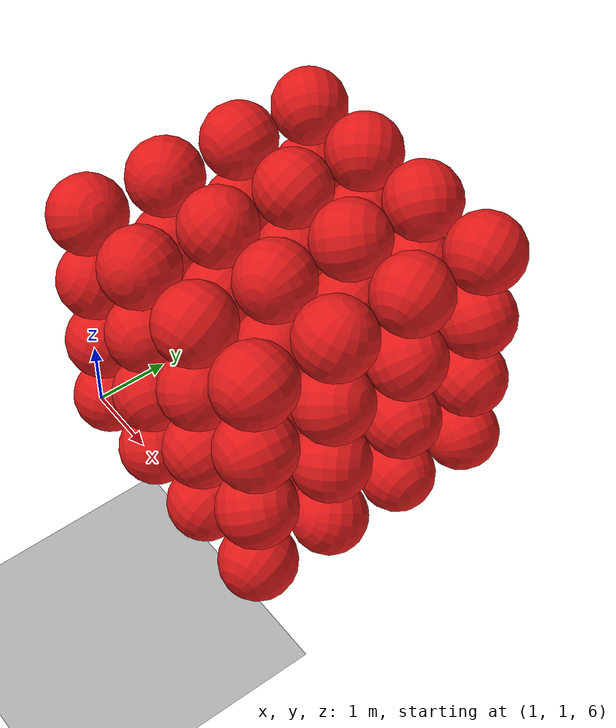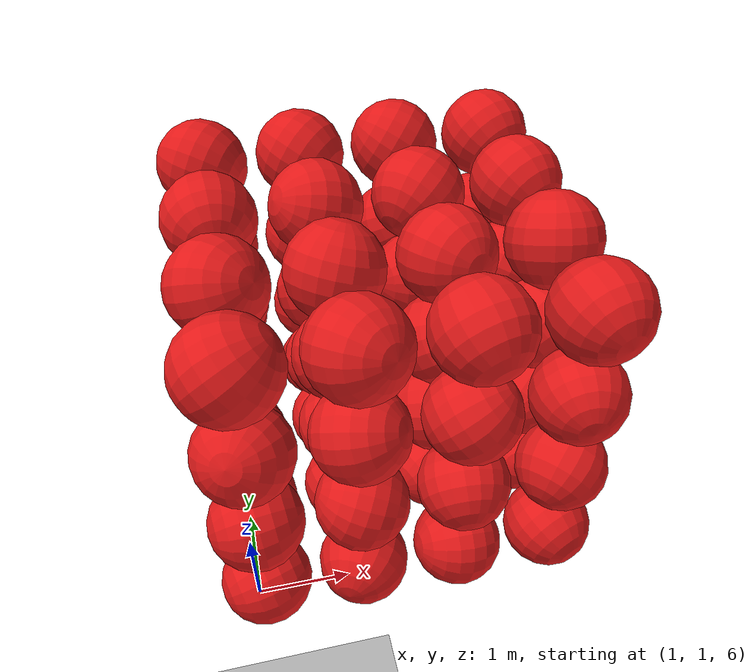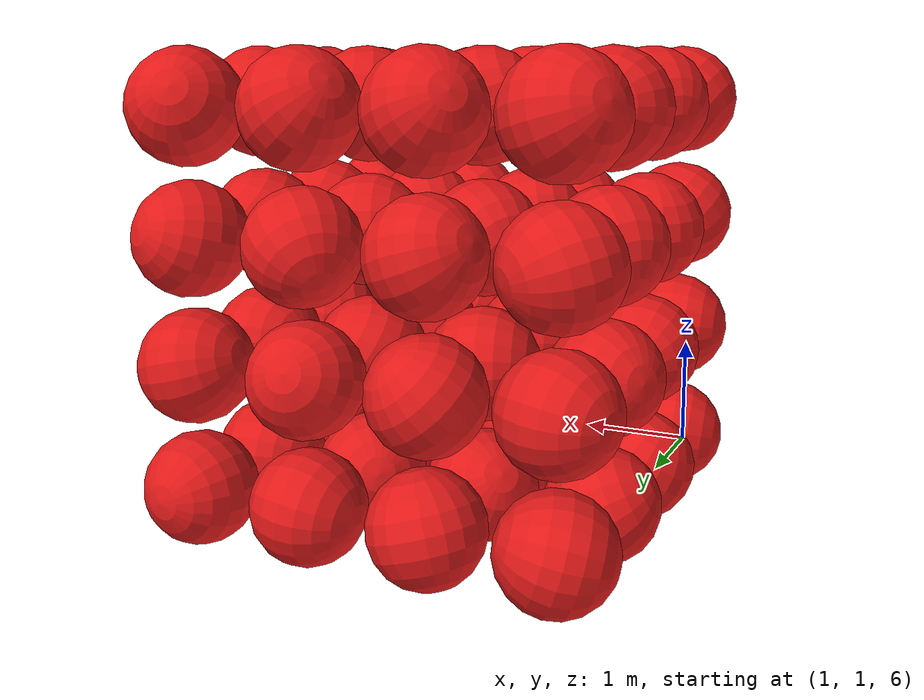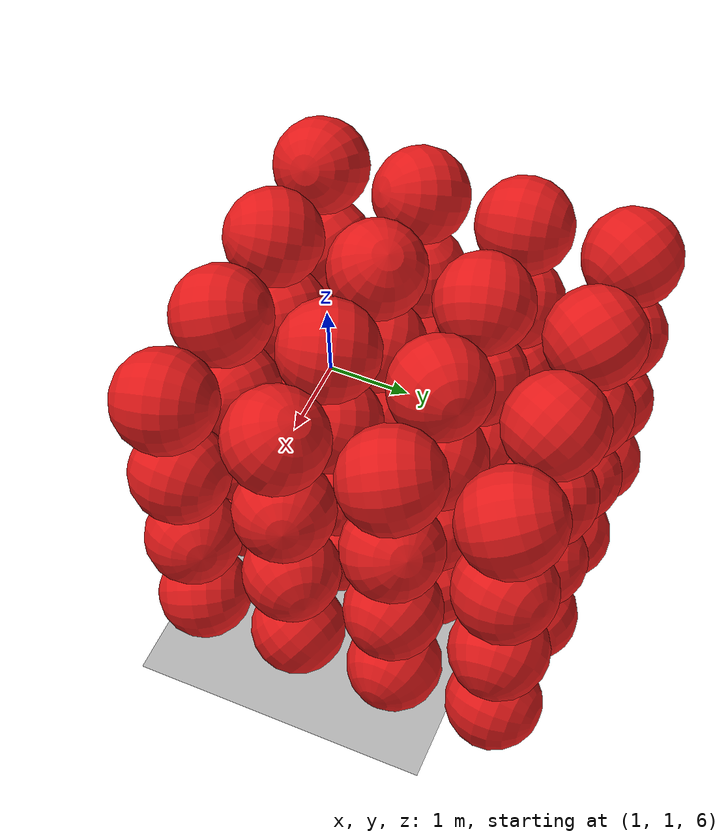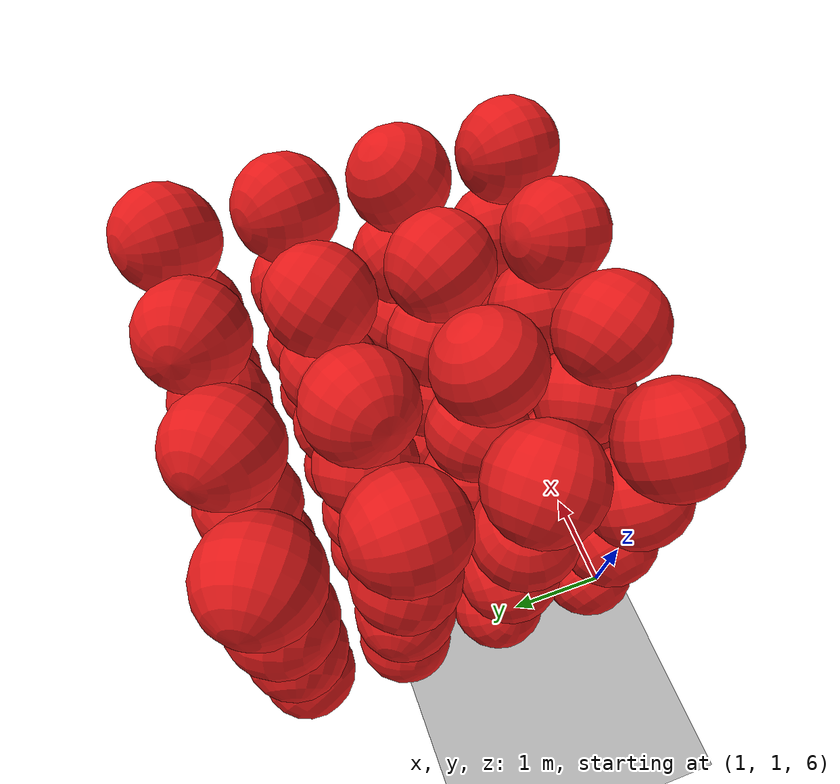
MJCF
<mujoco model="Humanoid and 100 objects">
    <compiler angle="degree"/>

    <option timestep="0.01" iterations="50" solver="PGS" jacobian="sparse" cone="elliptic" tolerance="1e-10"/>

    <size njmax="5000" nconmax="2000" nstack="1000000000"/>

    <default>
        <geom solimp=".9 .9 .01"/>

        <default class="object5">
			<geom type="sphere" material="geom" rgba=".9 .1 .1 1" size="0.500000"/>
        </default>
    </default>

    <asset>
        <texture type="skybox" builtin="gradient" width="128" height="128" rgb1=".4 .6 .8" rgb2="0 0 0"/>
        <texture name="texgeom" type="cube" builtin="flat" mark="cross" width="128" height="128"
            rgb1="0.6 0.6 0.6" rgb2="0.6 0.6 0.6" markrgb="1 1 1"/>
        <texture name="texplane" type="2d" builtin="checker" rgb1=".4 .4 .4" rgb2=".6 .6 .6"
            width="512" height="512"/>
        <material name='geom' texture="texgeom" texuniform="true"/>
        <material name='MatPlane' reflectance='0.3' texture="texplane" texrepeat="1 1" texuniform="true"/>
    </asset>

    <visual>
        <quality shadowsize="4096" offsamples="8"/>
        <map znear="0.1" force="0.05"/>
    </visual>

    <statistic extent="4"/>

    <worldbody>
        <light directional="true" diffuse=".8 .8 .8" pos="0 0 10" dir="0 0 -10"/>

        <geom pos="0 0 0" type="plane" size="3 3 .5" rgba=".7 .7 .7 1" material="MatPlane"/>
		<body pos="1.100521 1.100232 6.100489" quat="0.450100 0.649919 -0.379080 -0.480951"> <freejoint/> <geom class="object5"/> </body>
		<body pos="1.100988 1.100038 7.200885" quat="0.598861 0.429176 -0.581474 -0.345053"> <freejoint/> <geom class="object5"/> </body>
		<body pos="1.100335 1.100680 8.300137" quat="0.464071 -0.824899 0.322538 -0.012221"> <freejoint/> <geom class="object5"/> </body>
		<body pos="1.100779 1.100715 9.400904" quat="0.700829 -0.297305 0.356303 -0.541753"> <freejoint/> <geom class="object5"/> </body>
		<body pos="1.100031 2.200744 6.100500" quat="-0.046047 0.928205 0.251972 0.269861"> <freejoint/> <geom class="object5"/> </body>
		<body pos="1.100859 2.200805 7.200577" quat="-0.431603 -0.354002 0.526116 -0.641564"> <freejoint/> <geom class="object5"/> </body>
		<body pos="1.100490 2.200168 8.300979" quat="0.434151 0.000963 -0.059014 -0.898904"> <freejoint/> <geom class="object5"/> </body>
		<body pos="1.100682 2.200042 9.400071" quat="0.035828 -0.667360 0.526495 0.525500"> <freejoint/> <geom class="object5"/> </body>
		<body pos="1.100722 3.300150 6.100660" quat="0.032058 0.815416 0.256864 0.517775"> <freejoint/> <geom class="object5"/> </body>
		<body pos="1.100454 3.300432 7.200825" quat="-0.637706 -0.561614 -0.500041 -0.166974"> <freejoint/> <geom class="object5"/> </body>
		<body pos="1.100831 3.300803 8.300060" quat="-0.489255 0.130523 -0.404064 0.761791"> <freejoint/> <geom class="object5"/> </body>
		<body pos="1.100628 3.300292 9.400432" quat="-0.565181 0.564657 -0.388246 -0.459346"> <freejoint/> <geom class="object5"/> </body>
		<body pos="1.100372 4.400198 6.100490" quat="-0.206098 0.579915 0.539727 -0.574384"> <freejoint/> <geom class="object5"/> </body>
		<body pos="1.100738 4.400269 7.200423" quat="0.072299 0.668658 -0.124230 0.729546"> <freejoint/> <geom class="object5"/> </body>
		<body pos="1.100301 4.400701 8.300666" quat="0.094313 0.477526 0.401410 -0.775850"> <freejoint/> <geom class="object5"/> </body>
		<body pos="1.100128 4.400999 9.400171" quat="-0.742137 0.097173 0.606329 0.268617"> <freejoint/> <geom class="object5"/> </body>
		<body pos="2.200190 1.100369 6.100461" quat="0.682926 -0.487192 0.504105 0.205265"> <freejoint/> <geom class="object5"/> </body>
		<body pos="2.200376 1.100191 7.200428" quat="-0.037713 -0.795863 0.187765 -0.574390"> <freejoint/> <geom class="object5"/> </body>
		<body pos="2.200385 1.100583 8.300252" quat="-0.448890 0.250817 -0.502784 0.694836"> <freejoint/> <geom class="object5"/> </body>
		<body pos="2.200983 1.100730 9.400344" quat="0.122610 -0.572045 0.592576 0.553702"> <freejoint/> <geom class="object5"/> </body>
		<body pos="2.200818 2.200261 6.100594" quat="-0.771298 -0.120731 -0.302520 -0.546813"> <freejoint/> <geom class="object5"/> </body>
		<body pos="2.200179 2.200423 7.200094" quat="0.330431 -0.097515 0.657180 0.670389"> <freejoint/> <geom class="object5"/> </body>
		<body pos="2.200639 2.200034 8.300069" quat="-0.702822 0.120244 0.601706 -0.359907"> <freejoint/> <geom class="object5"/> </body>
		<body pos="2.200820 2.200718 9.400969" quat="0.070171 -0.391578 -0.883175 0.248487"> <freejoint/> <geom class="object5"/> </body>
		<body pos="2.200779 3.300423 6.100091" quat="-0.491190 -0.728478 -0.460620 -0.126021"> <freejoint/> <geom class="object5"/> </body>
		<body pos="2.200527 3.300457 7.200875" quat="0.027672 0.680027 0.211093 0.701596"> <freejoint/> <geom class="object5"/> </body>
		<body pos="2.200241 3.300676 8.300289" quat="0.306431 0.348046 -0.770513 -0.437348"> <freejoint/> <geom class="object5"/> </body>
		<body pos="2.200224 3.300668 9.400844" quat="-0.253333 0.456898 0.285573 -0.803440"> <freejoint/> <geom class="object5"/> </body>
		<body pos="2.200602 4.400387 6.100916" quat="-0.983040 -0.073998 -0.149079 -0.077019"> <freejoint/> <geom class="object5"/> </body>
		<body pos="2.200770 4.400322 7.200785" quat="-0.047052 -0.762613 -0.532449 0.364287"> <freejoint/> <geom class="object5"/> </body>
		<body pos="2.200473 4.400153 8.300341" quat="0.224153 -0.643417 0.497666 -0.536748"> <freejoint/> <geom class="object5"/> </body>
		<body pos="2.200917 4.400269 9.400766" quat="-0.554650 -0.378573 -0.728433 0.135767"> <freejoint/> <geom class="object5"/> </body>
		<body pos="3.300683 1.100547 6.100426" quat="0.473291 0.483694 0.586579 0.444928"> <freejoint/> <geom class="object5"/> </body>
		<body pos="3.300945 1.100209 7.200709" quat="-0.551879 -0.796329 0.224510 -0.104326"> <freejoint/> <geom class="object5"/> </body>
		<body pos="3.300459 1.100662 8.300770" quat="-0.360500 0.389930 -0.201792 0.822967"> <freejoint/> <geom class="object5"/> </body>
		<body pos="3.300833 1.100256 9.400613" quat="0.183635 0.090957 0.825955 -0.525170"> <freejoint/> <geom class="object5"/> </body>
		<body pos="3.300318 2.200119 6.100940" quat="0.701784 -0.099019 0.671722 0.215600"> <freejoint/> <geom class="object5"/> </body>
		<body pos="3.300647 2.200544 7.200721" quat="0.032510 0.713503 -0.406569 -0.569701"> <freejoint/> <geom class="object5"/> </body>
		<body pos="3.300110 2.200064 8.300405" quat="-0.158226 -0.411245 0.807587 0.391976"> <freejoint/> <geom class="object5"/> </body>
		<body pos="3.300772 2.200933 9.400973" quat="-0.470330 -0.551507 0.299735 -0.620313"> <freejoint/> <geom class="object5"/> </body>
		<body pos="3.300525 3.300530 6.100861" quat="-0.048097 -0.338319 0.544363 0.766091"> <freejoint/> <geom class="object5"/> </body>
		<body pos="3.300520 3.300348 7.200150" quat="0.148413 -0.410033 -0.785308 0.439475"> <freejoint/> <geom class="object5"/> </body>
		<body pos="3.300243 3.300442 8.300688" quat="-0.405695 0.681117 -0.303446 0.528593"> <freejoint/> <geom class="object5"/> </body>
		<body pos="3.300704 3.300442 9.400020" quat="-0.399907 -0.178957 -0.543155 -0.716263"> <freejoint/> <geom class="object5"/> </body>
		<body pos="3.300822 4.400430 6.100888" quat="-0.249580 0.617234 -0.236716 0.707600"> <freejoint/> <geom class="object5"/> </body>
		<body pos="3.300755 4.400377 7.200216" quat="0.494225 0.764641 -0.293455 0.291463"> <freejoint/> <geom class="object5"/> </body>
		<body pos="3.300439 4.400834 8.300769" quat="-0.479314 0.521425 0.705650 0.020777"> <freejoint/> <geom class="object5"/> </body>
		<body pos="3.300884 4.400588 9.400155" quat="-0.581287 -0.180204 0.481678 0.630570"> <freejoint/> <geom class="object5"/> </body>
		<body pos="4.400790 1.100319 6.100534" quat="-0.589946 -0.558646 -0.523273 0.257030"> <freejoint/> <geom class="object5"/> </body>
		<body pos="4.400495 1.100190 7.200495" quat="-0.525961 -0.664222 0.523455 0.090388"> <freejoint/> <geom class="object5"/> </body>
		<body pos="4.400930 1.100697 8.300583" quat="0.368731 0.443105 0.571586 -0.583939"> <freejoint/> <geom class="object5"/> </body>
		<body pos="4.400865 1.100613 9.400990" quat="0.067925 -0.050248 0.739483 -0.667852"> <freejoint/> <geom class="object5"/> </body>
		<body pos="4.400498 2.200901 6.100575" quat="0.693646 0.479555 0.172794 -0.508945"> <freejoint/> <geom class="object5"/> </body>
		<body pos="4.400666 2.200083 7.200626" quat="0.236277 0.337290 0.573648 0.708051"> <freejoint/> <geom class="object5"/> </body>
		<body pos="4.400769 2.200581 8.300928" quat="0.111600 -0.673051 -0.528306 0.505412"> <freejoint/> <geom class="object5"/> </body>
		<body pos="4.400484 2.200845 9.400209" quat="0.104209 0.258839 -0.932674 0.228607"> <freejoint/> <geom class="object5"/> </body>
		<body pos="4.400362 3.300050 6.100490" quat="-0.459246 -0.562937 -0.439854 -0.527942"> <freejoint/> <geom class="object5"/> </body>
		<body pos="4.400189 3.300043 7.200635" quat="-0.738857 0.130734 0.661053 -0.002994"> <freejoint/> <geom class="object5"/> </body>
		<body pos="4.400536 3.300445 8.300124" quat="-0.017119 0.626681 0.663836 -0.407798"> <freejoint/> <geom class="object5"/> </body>
		<body pos="4.400208 3.300565 9.400640" quat="-0.121201 -0.429499 0.654323 -0.610494"> <freejoint/> <geom class="object5"/> </body>
		<body pos="4.400106 4.400142 6.100166" quat="0.189686 0.115591 -0.702427 0.676206"> <freejoint/> <geom class="object5"/> </body>
		<body pos="4.400729 4.400738 7.200063" quat="0.436424 0.525980 0.586513 0.434605"> <freejoint/> <geom class="object5"/> </body>
		<body pos="4.400786 4.400513 8.300178" quat="-0.135855 -0.490407 -0.628448 0.588300"> <freejoint/> <geom class="object5"/> </body>
		<body pos="4.400301 4.400296 9.400333" quat="-0.054467 0.245111 -0.785245 0.565990"> <freejoint/> <geom class="object5"/> </body>

    </worldbody>
</mujoco>
